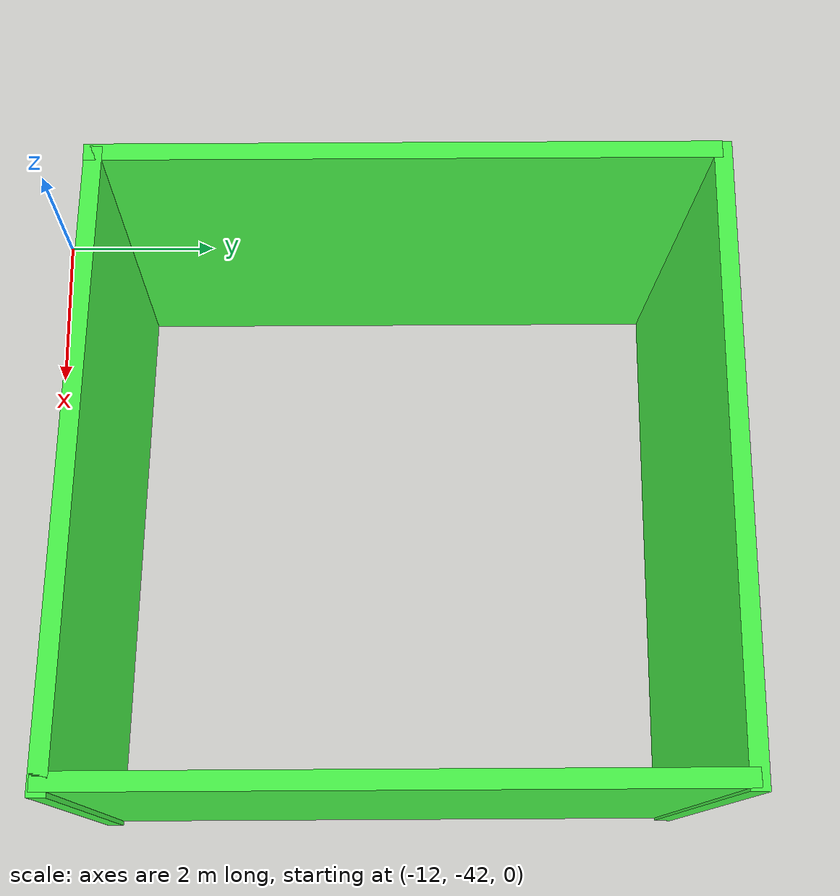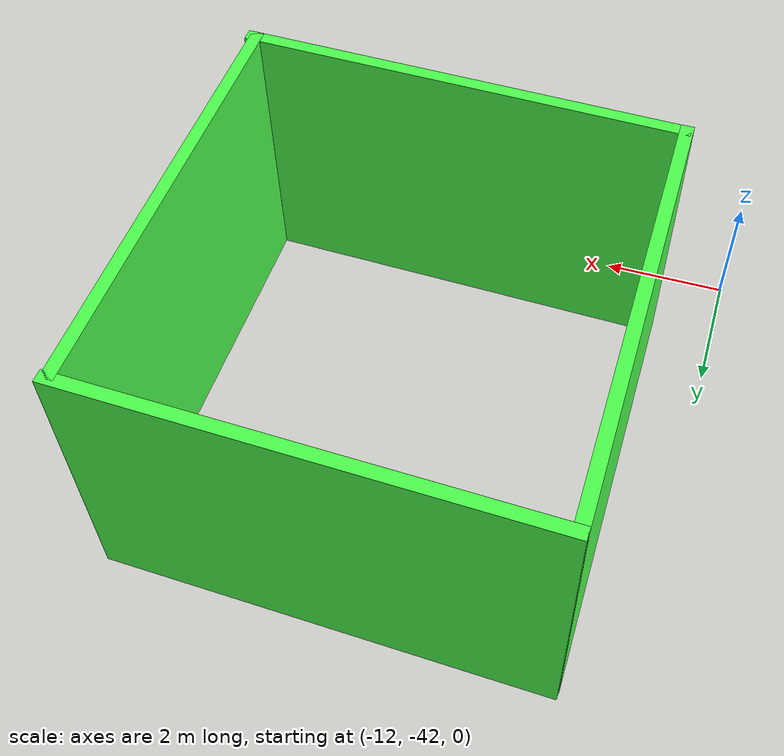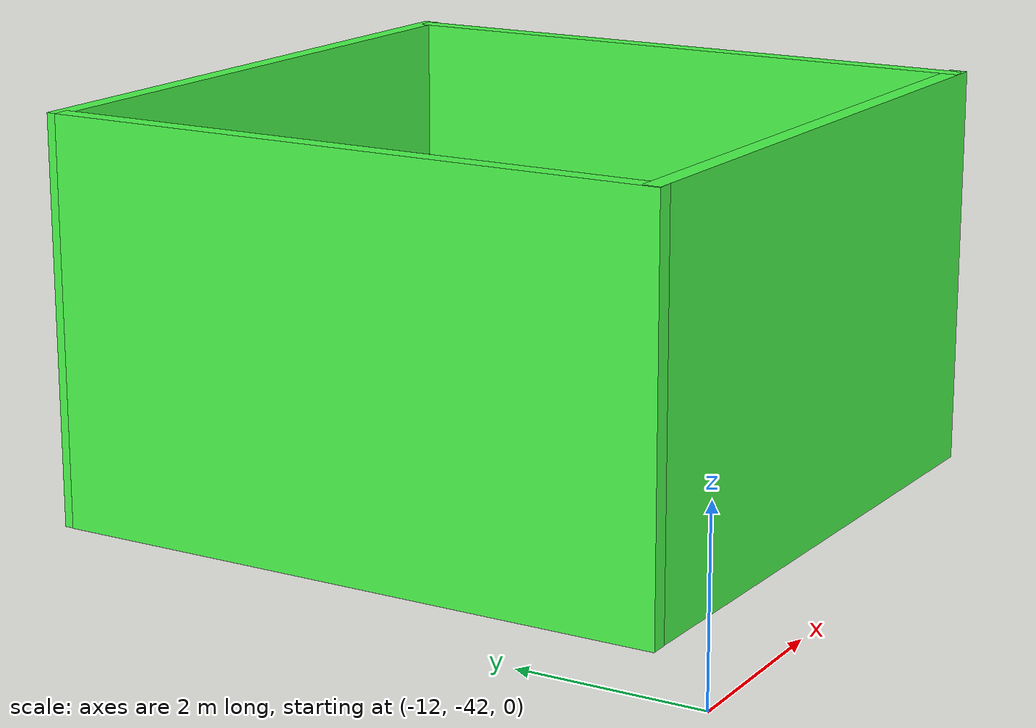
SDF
<sdf version="1.7">
 <world name="default">
  <model name="wall_clone_1_0">
   <pose>-7.5 -37.5 2.25 0 -0 0</pose>
   <frame name="closed_green_wall::__model__" attached_to="closed_green_wall::link_0">
    <pose relative_to="__model__">0 0 0 0 -0 0</pose>
   </frame>
   <link name="closed_green_wall::link_0">
    <inertial>
     <mass>1</mass>
     <inertia>
      <ixx>0.166667</ixx>
      <ixy>0</ixy>
      <ixz>0</ixz>
      <iyy>0.166667</iyy>
      <iyz>0</iyz>
      <izz>0.166667</izz>
     </inertia>
    </inertial>
    <pose relative_to="closed_green_wall::__model__">3.37098 -0.107634 -0 0 -0 0</pose>
    <visual name="visual">
     <geometry><box><size>0.2 7 4.5</size></box></geometry>
     <material>
      <lighting>1</lighting>
      <script><uri>file://media/materials/scripts/gazebo.material</uri><name>Gazebo/Grey</name></script>
      <shader type="vertex"><normal_map>__default__</normal_map></shader>
      <ambient>0.3 1 0.3 1</ambient>
      <diffuse>0.7 0.7 0.7 1</diffuse>
      <specular>0.01 0.01 0.01 1</specular>
      <emissive>0 0 0 1</emissive>
     </material>
    </visual>
    <collision name="collision">
     <geometry><box><size>0.2 7 4.5</size></box></geometry>
     <surface>
      <friction>
       <ode><mu>1</mu><mu2>1</mu2><fdir1>0 0 0</fdir1><slip1>0</slip1><slip2>0</slip2></ode>
       <torsional>
        <coefficient>1</coefficient>
        <patch_radius>0</patch_radius>
        <surface_radius>0</surface_radius>
        <use_patch_radius>1</use_patch_radius>
        <ode><slip>0</slip></ode>
       </torsional>
      </friction>
      <bounce><restitution_coefficient>0</restitution_coefficient><threshold>1e+06</threshold></bounce>
      <contact>
       <collide_without_contact>0</collide_without_contact>
       <collide_without_contact_bitmask>1</collide_without_contact_bitmask>
       <collide_bitmask>1</collide_bitmask>
       <ode>
        <soft_cfm>0</soft_cfm>
        <soft_erp>0.2</soft_erp>
        <kp>1e+13</kp>
        <kd>1</kd>
        <max_vel>0.01</max_vel>
        <min_depth>0</min_depth>
       </ode>
       <bullet>
        <split_impulse>1</split_impulse>
        <split_impulse_penetration_threshold>-0.01</split_impulse_penetration_threshold>
        <soft_cfm>0</soft_cfm>
        <soft_erp>0.2</soft_erp>
        <kp>1e+13</kp>
        <kd>1</kd>
       </bullet>
      </contact>
     </surface>
    </collision>
   </link>
   <link name="closed_green_wall::link_0_clone">
    <inertial>
     <mass>1</mass>
     <inertia>
      <ixx>0.166667</ixx>
      <ixy>0</ixy>
      <ixz>0</ixz>
      <iyy>0.166667</iyy>
      <iyz>0</iyz>
      <izz>0.166667</izz>
     </inertia>
    </inertial>
    <pose relative_to="closed_green_wall::__model__">0.024232 -3.42805 -0 0 0 -1.59986</pose>
    <visual name="visual">
     <geometry><box><size>0.2 7 4.5</size></box></geometry>
     <material>
      <lighting>1</lighting>
      <script><uri>file://media/materials/scripts/gazebo.material</uri><name>Gazebo/Grey</name></script>
      <shader type="vertex"><normal_map>__default__</normal_map></shader>
      <ambient>0.3 1 0.3 1</ambient>
      <diffuse>0.7 0.7 0.7 1</diffuse>
      <specular>0.01 0.01 0.01 1</specular>
      <emissive>0 0 0 1</emissive>
     </material>
    </visual>
    <collision name="collision">
     <geometry><box><size>0.2 7 4.5</size></box></geometry>
     <surface>
      <friction>
       <ode><mu>1</mu><mu2>1</mu2><fdir1>0 0 0</fdir1><slip1>0</slip1><slip2>0</slip2></ode>
       <torsional>
        <coefficient>1</coefficient>
        <patch_radius>0</patch_radius>
        <surface_radius>0</surface_radius>
        <use_patch_radius>1</use_patch_radius>
        <ode><slip>0</slip></ode>
       </torsional>
      </friction>
      <bounce><restitution_coefficient>0</restitution_coefficient><threshold>1e+06</threshold></bounce>
      <contact>
       <collide_without_contact>0</collide_without_contact>
       <collide_without_contact_bitmask>1</collide_without_contact_bitmask>
       <collide_bitmask>1</collide_bitmask>
       <ode>
        <soft_cfm>0</soft_cfm>
        <soft_erp>0.2</soft_erp>
        <kp>1e+13</kp>
        <kd>1</kd>
        <max_vel>0.01</max_vel>
        <min_depth>0</min_depth>
       </ode>
       <bullet>
        <split_impulse>1</split_impulse>
        <split_impulse_penetration_threshold>-0.01</split_impulse_penetration_threshold>
        <soft_cfm>0</soft_cfm>
        <soft_erp>0.2</soft_erp>
        <kp>1e+13</kp>
        <kd>1</kd>
       </bullet>
      </contact>
     </surface>
    </collision>
   </link>
   <link name="closed_green_wall::link_0_clone_0">
    <inertial>
     <mass>1</mass>
     <inertia>
      <ixx>0.166667</ixx>
      <ixy>0</ixy>
      <ixz>0</ixz>
      <iyy>0.166667</iyy>
      <iyz>0</iyz>
      <izz>0.166667</izz>
     </inertia>
    </inertial>
    <pose relative_to="closed_green_wall::__model__">-3.40001 0.065208 -0 0 -0 0</pose>
    <visual name="visual">
     <geometry><box><size>0.2 7 4.5</size></box></geometry>
     <material>
      <lighting>1</lighting>
      <script><uri>file://media/materials/scripts/gazebo.material</uri><name>Gazebo/Grey</name></script>
      <shader type="vertex"><normal_map>__default__</normal_map></shader>
      <ambient>0.3 1 0.3 1</ambient>
      <diffuse>0.7 0.7 0.7 1</diffuse>
      <specular>0.01 0.01 0.01 1</specular>
      <emissive>0 0 0 1</emissive>
     </material>
    </visual>
    <collision name="collision">
     <geometry><box><size>0.2 7 4.5</size></box></geometry>
     <surface>
      <friction>
       <ode><mu>1</mu><mu2>1</mu2><fdir1>0 0 0</fdir1><slip1>0</slip1><slip2>0</slip2></ode>
       <torsional>
        <coefficient>1</coefficient>
        <patch_radius>0</patch_radius>
        <surface_radius>0</surface_radius>
        <use_patch_radius>1</use_patch_radius>
        <ode><slip>0</slip></ode>
       </torsional>
      </friction>
      <bounce><restitution_coefficient>0</restitution_coefficient><threshold>1e+06</threshold></bounce>
      <contact>
       <collide_without_contact>0</collide_without_contact>
       <collide_without_contact_bitmask>1</collide_without_contact_bitmask>
       <collide_bitmask>1</collide_bitmask>
       <ode>
        <soft_cfm>0</soft_cfm>
        <soft_erp>0.2</soft_erp>
        <kp>1e+13</kp>
        <kd>1</kd>
        <max_vel>0.01</max_vel>
        <min_depth>0</min_depth>
       </ode>
       <bullet>
        <split_impulse>1</split_impulse>
        <split_impulse_penetration_threshold>-0.01</split_impulse_penetration_threshold>
        <soft_cfm>0</soft_cfm>
        <soft_erp>0.2</soft_erp>
        <kp>1e+13</kp>
        <kd>1</kd>
       </bullet>
      </contact>
     </surface>
    </collision>
   </link>
   <link name="closed_green_wall::link_0_clone_clone">
    <inertial>
     <mass>1</mass>
     <inertia>
      <ixx>0.166667</ixx>
      <ixy>0</ixy>
      <ixz>0</ixz>
      <iyy>0.166667</iyy>
      <iyz>0</iyz>
      <izz>0.166667</izz>
     </inertia>
    </inertial>
    <pose relative_to="closed_green_wall::__model__">0.004806 3.47046 -0 0 0 -1.59986</pose>
    <visual name="visual">
     <geometry><box><size>0.2 7 4.5</size></box></geometry>
     <material>
      <lighting>1</lighting>
      <script><uri>file://media/materials/scripts/gazebo.material</uri><name>Gazebo/Grey</name></script>
      <shader type="vertex"><normal_map>__default__</normal_map></shader>
      <ambient>0.3 1 0.3 1</ambient>
      <diffuse>0.7 0.7 0.7 1</diffuse>
      <specular>0.01 0.01 0.01 1</specular>
      <emissive>0 0 0 1</emissive>
     </material>
    </visual>
    <collision name="collision">
     <geometry><box><size>0.2 7 4.5</size></box></geometry>
     <surface>
      <friction>
       <ode><mu>1</mu><mu2>1</mu2><fdir1>0 0 0</fdir1><slip1>0</slip1><slip2>0</slip2></ode>
       <torsional>
        <coefficient>1</coefficient>
        <patch_radius>0</patch_radius>
        <surface_radius>0</surface_radius>
        <use_patch_radius>1</use_patch_radius>
        <ode><slip>0</slip></ode>
       </torsional>
      </friction>
      <bounce><restitution_coefficient>0</restitution_coefficient><threshold>1e+06</threshold></bounce>
      <contact>
       <collide_without_contact>0</collide_without_contact>
       <collide_without_contact_bitmask>1</collide_without_contact_bitmask>
       <collide_bitmask>1</collide_bitmask>
       <ode>
        <soft_cfm>0</soft_cfm>
        <soft_erp>0.2</soft_erp>
        <kp>1e+13</kp>
        <kd>1</kd>
        <max_vel>0.01</max_vel>
        <min_depth>0</min_depth>
       </ode>
       <bullet>
        <split_impulse>1</split_impulse>
        <split_impulse_penetration_threshold>-0.01</split_impulse_penetration_threshold>
        <soft_cfm>0</soft_cfm>
        <soft_erp>0.2</soft_erp>
        <kp>1e+13</kp>
        <kd>1</kd>
       </bullet>
      </contact>
     </surface>
    </collision>
   </link>
   <joint name="closed_green_wall::link_0_JOINT_1" type="fixed">
    <parent>closed_green_wall::link_0</parent>
    <child>closed_green_wall::link_0_clone_clone</child>
    <physics>
     <ode><limit><cfm>0</cfm><erp>0.2</erp></limit><suspension><cfm>0</cfm><erp>0.2</erp></suspension></ode>
    </physics>
   </joint>
   <joint name="closed_green_wall::link_0_clone_0_JOINT_3" type="fixed">
    <parent>closed_green_wall::link_0_clone_0</parent>
    <child>closed_green_wall::link_0_clone</child>
    <physics>
     <ode><limit><cfm>0</cfm><erp>0.2</erp></limit><suspension><cfm>0</cfm><erp>0.2</erp></suspension></ode>
    </physics>
   </joint>
   <joint name="closed_green_wall::link_0_clone_JOINT_0" type="fixed">
    <parent>closed_green_wall::link_0_clone</parent>
    <child>closed_green_wall::link_0</child>
    <physics>
     <ode><limit><cfm>0</cfm><erp>0.2</erp></limit><suspension><cfm>0</cfm><erp>0.2</erp></suspension></ode>
    </physics>
   </joint>
   <joint name="closed_green_wall::link_0_clone_clone_JOINT_2" type="fixed">
    <parent>closed_green_wall::link_0_clone_clone</parent>
    <child>closed_green_wall::link_0_clone_0</child>
    <physics>
     <ode><limit><cfm>0</cfm><erp>0.2</erp></limit><suspension><cfm>0</cfm><erp>0.2</erp></suspension></ode>
    </physics>
   </joint>
   <static>1</static>
  </model>
 </world>
</sdf>
